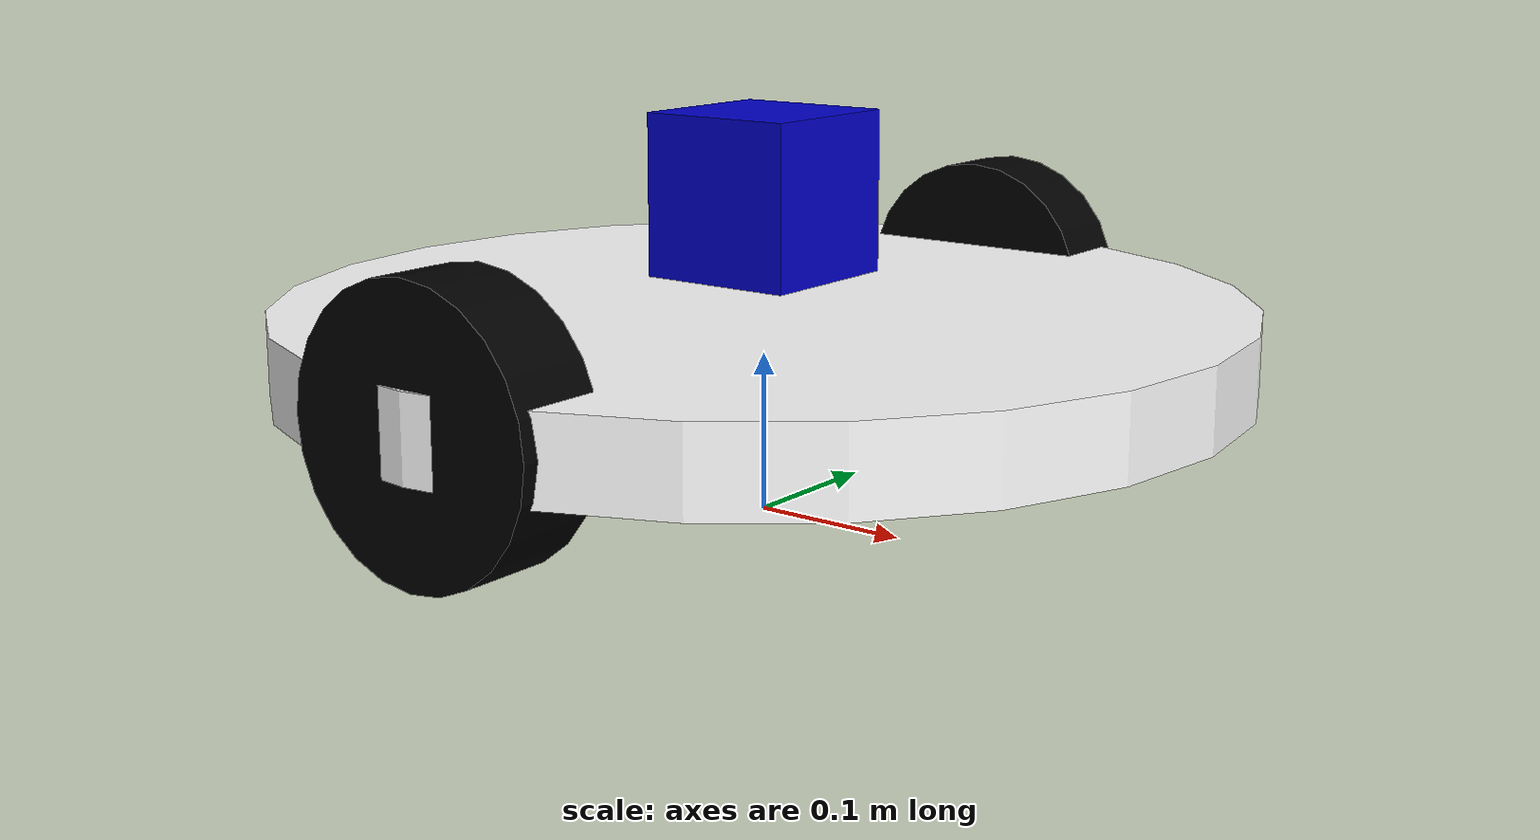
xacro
<?xml version='1.0'?>

<robot name="mobile_robot" xmlns:xacro="http://www.ros.org/wiki/xacro">

  <material name="blue">
    <color rgba="0 0 0.8 1"/>
  </material>
  <material name="black">
    <color rgba="0 0 0 1"/>
  </material>
  <material name="white">
    <color rgba="1 1 1 1"/>
  </material>

  <link name="base_link">
    <pose>0 0 0.1 0 0 0</pose>
    <inertial>
      <mass value="15.0"/>
      <origin xyz="0.0 0 0.11" rpy=" 0 0 0"/>
      <inertia
          ixx="0.1" ixy="0" ixz="0"
          iyy="0.1" iyz="0"
          izz="0.1"
      />
    </inertial>

    <collision name='collision'>
      <origin xyz="0 0 0.11" rpy=" 0 0 0"/>
      <geometry>
        <cylinder length=".05" radius="0.3"/>
      </geometry>
    </collision>

    <visual name='base_link'>
      <origin xyz="0 0 0.11" rpy=" 0 0 0"/>
      <geometry>
        <cylinder length=".05" radius="0.3"/>
      </geometry>
      <material name="white"/>
    </visual>
  </link>

  <link name='right_wheel'>
    <inertial>
      <mass value="5.0"/>
      <origin xyz="0 0 0" rpy="0 1.5707 1.5707"/>
      <inertia
          ixx="0.1" ixy="0" ixz="0"
          iyy="0.1" iyz="0"
          izz="0.1"
      />
    </inertial>

    <collision name='right_wheel_collision'>
      <origin xyz="0 0 0" rpy="0 1.5707 1.5707"/>
      <geometry>
        <cylinder length=".055" radius="0.0825"/>
      </geometry>
    </collision>

    <visual name='right_wheel_visual'>
      <origin xyz="0 0 0" rpy="0 1.5707 1.5707"/>
      <geometry>
        <cylinder length=".055" radius="0.0825"/>
      </geometry>
      <material name="black"/>
    </visual>
  </link>

  <joint type="fixed" name="right_wheel_hinge">
    <origin xyz="0 0.27 0.11" rpy="0 0 0"/>
    <child link="right_wheel"/>
    <parent link="base_link"/>
    <axis xyz="0 1 0" rpy="0 0 0"/>
    <limit effort="10000" velocity="1000"/>
    <dynamics damping="1.0" friction="1.0"/>
  </joint>

  <link name='left_wheel'>
    <inertial>
      <mass value="5.0"/>
      <origin xyz="0 0 0.08" rpy="0 1.5707 1.5707"/>
      <inertia
          ixx="0.1" ixy="0" ixz="0"
          iyy="0.1" iyz="0"
          izz="0.1"
      />
    </inertial>

    <collision name='left_wheel_collision'>
      <origin xyz="0 0 0" rpy="0 1.5707 1.5707"/>
      <geometry>
        <cylinder length=".055" radius="0.0825"/>
      </geometry>
    </collision>

    <visual name='left_wheel_visual'>
      <origin xyz="0 0 0" rpy="0 1.5707 1.5707"/>
      <geometry>
        <cylinder length=".055" radius="0.0825"/>
      </geometry>
      <material name="black"/>
    </visual>
  </link>

  <joint type="fixed" name="left_wheel_hinge">
    <origin xyz="0 -0.27 0.11" rpy="0 0 0"/>
    <child link="left_wheel"/>
    <parent link="base_link"/>
    <axis xyz="0 1 0" rpy="0 0 0"/>
    <limit effort="10000" velocity="1000"/>
    <dynamics damping="1.0" friction="1.0"/>
  </joint>

  <link name='hokuyo'>
    <inertial>
      <mass value="1e-5"/>
      <origin xyz="0 0 0" rpy="0 0 0"/>
      <inertia
          ixx="1e-6" ixy="0" ixz="0"
          iyy="1e-6" iyz="0"
          izz="1e-6"
      />
    </inertial>

    <collision name='hokuyo_collision'>
      <origin xyz="0 0 0" rpy="0 0 0"/>
      <geometry>
        <box size=".1 .1 .1"/>
      </geometry>
    </collision>

    <visual name='hokuyo_visual'>
      <origin xyz="0 0 0" rpy="0 0 0"/>
      <geometry>
         <box size=".1 .1 .1"/>
      </geometry>
      <material name="blue"/>
    </visual>
  </link>

  <joint name="hokuyo_joint" type="fixed">
    <origin xyz="0 0 0.20" rpy="0 0 0"/>
    <child link="hokuyo"/>
    <parent link="base_link"/>
    <axis xyz="0 1 0" rpy="0 0 0"/>
  </joint>

<link name='laser'>
</link>
 <joint name="laser_joint" type="fixed">
    <origin xyz="0 0 0" rpy="0 0 3.140"/>
    <child link="laser"/>
    <parent link="hokuyo"/>
    <axis xyz="0 1 0" rpy="0 0 0"/>
  </joint>

</robot>
